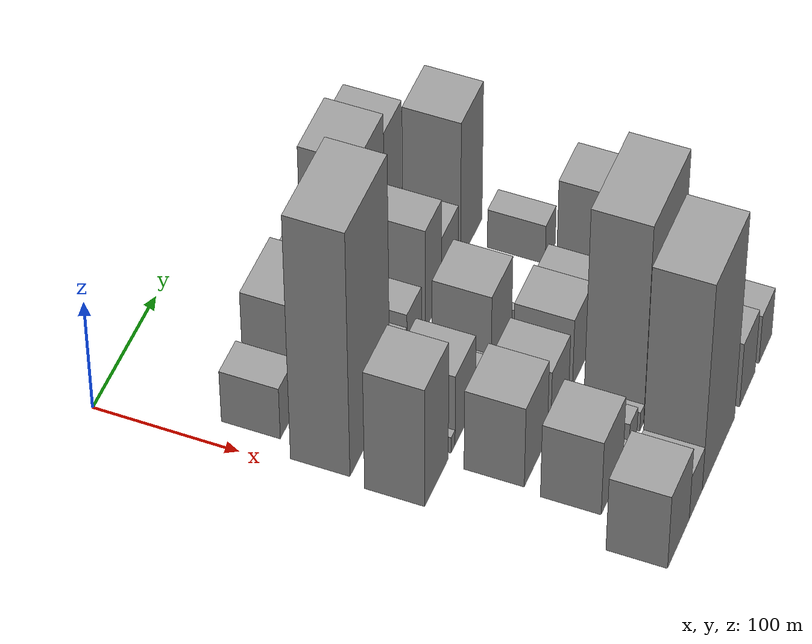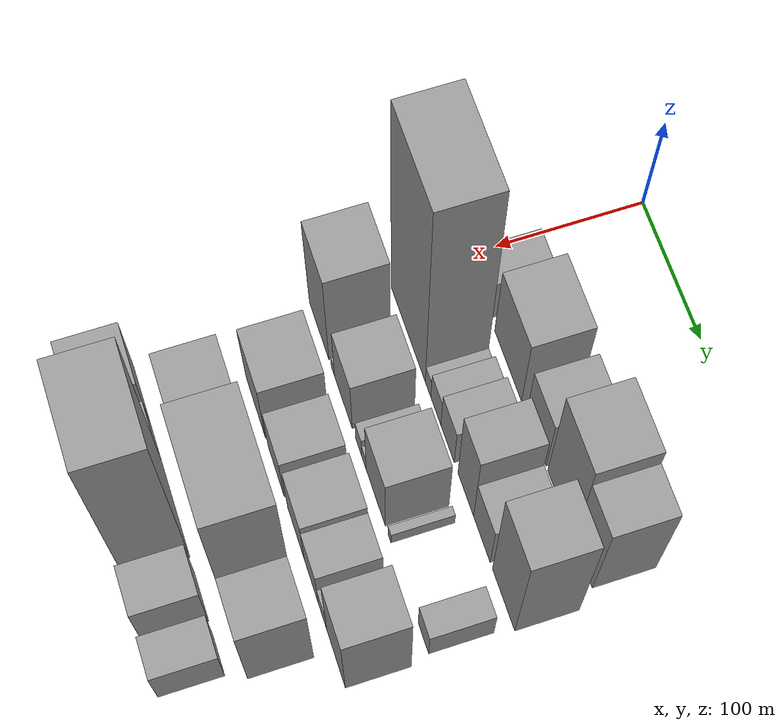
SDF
<sdf version="1.6">
 <world name="default">
  <model name="building_27">
   <static>1</static>
   <pose>100.0000 32.3830 0 0.000000 0.000000 0.000000</pose>
   <link name="link">
    <pose>0 0 24.00 0 0 0</pose>
    <collision name="collision"><geometry><box><size>40.0000 27.1123 48.0000</size></box></geometry></collision>
    <visual name="visual">
     <cast_shadows>0</cast_shadows>
     <geometry><box><size>40.0000 27.1123 48.0000</size></box></geometry>
     <material>
      <script>
       <uri>model://grey_wall/materials/scripts</uri>
       <uri>model://grey_wall/materials/textures</uri>
       <name>vrc/grey_wall</name>
      </script>
     </material>
    </visual>
   </link>
  </model>
  <model name="building_28">
   <static>1</static>
   <pose>100.0000 79.7032 0 0.000000 0.000000 0.000000</pose>
   <link name="link">
    <pose>0 0 42.00 0 0 0</pose>
    <collision name="collision"><geometry><box><size>40.0000 49.5280 84.0000</size></box></geometry></collision>
    <visual name="visual">
     <cast_shadows>0</cast_shadows>
     <geometry><box><size>40.0000 49.5280 84.0000</size></box></geometry>
     <material>
      <script>
       <uri>model://grey_wall/materials/scripts</uri>
       <uri>model://grey_wall/materials/textures</uri>
       <name>vrc/grey_wall</name>
      </script>
     </material>
    </visual>
   </link>
  </model>
  <model name="building_29">
   <static>1</static>
   <pose>100.0000 131.0560 0 0.000000 0.000000 0.000000</pose>
   <link name="link">
    <pose>0 0 33.00 0 0 0</pose>
    <collision name="collision"><geometry><box><size>40.0000 35.1776 66.0000</size></box></geometry></collision>
    <visual name="visual">
     <cast_shadows>0</cast_shadows>
     <geometry><box><size>40.0000 35.1776 66.0000</size></box></geometry>
     <material>
      <script>
       <uri>model://grey_wall/materials/scripts</uri>
       <uri>model://grey_wall/materials/textures</uri>
       <name>vrc/grey_wall</name>
      </script>
     </material>
    </visual>
   </link>
  </model>
  <model name="building_30">
   <static>1</static>
   <pose>100.0000 174.4032 0 0.000000 0.000000 0.000000</pose>
   <link name="link">
    <pose>0 0 60.00 0 0 0</pose>
    <collision name="collision"><geometry><box><size>40.0000 45.5167 120.0000</size></box></geometry></collision>
    <visual name="visual">
     <cast_shadows>0</cast_shadows>
     <geometry><box><size>40.0000 45.5167 120.0000</size></box></geometry>
     <material>
      <script>
       <uri>model://grey_wall/materials/scripts</uri>
       <uri>model://grey_wall/materials/textures</uri>
       <name>vrc/grey_wall</name>
      </script>
     </material>
    </visual>
   </link>
  </model>
  <model name="building_31">
   <static>1</static>
   <pose>100.0000 212.8217 0 0.000000 0.000000 0.000000</pose>
   <link name="link">
    <pose>0 0 51.00 0 0 0</pose>
    <collision name="collision"><geometry><box><size>40.0000 31.3202 102.0000</size></box></geometry></collision>
    <visual name="visual">
     <cast_shadows>0</cast_shadows>
     <geometry><box><size>40.0000 31.3202 102.0000</size></box></geometry>
     <material>
      <script>
       <uri>model://grey_wall/materials/scripts</uri>
       <uri>model://grey_wall/materials/textures</uri>
       <name>vrc/grey_wall</name>
      </script>
     </material>
    </visual>
   </link>
  </model>
  <model name="building_73">
   <static>1</static>
   <pose>152.0000 40.2051 0 0.000000 0.000000 0.000000</pose>
   <link name="link">
    <pose>0 0 112.50 0 0 0</pose>
    <collision name="collision"><geometry><box><size>40.0000 67.8419 225.0000</size></box></geometry></collision>
    <visual name="visual">
     <cast_shadows>0</cast_shadows>
     <geometry><box><size>40.0000 67.8419 225.0000</size></box></geometry>
     <material>
      <script>
       <uri>model://grey_wall/materials/scripts</uri>
       <uri>model://grey_wall/materials/textures</uri>
       <name>vrc/grey_wall</name>
      </script>
     </material>
    </visual>
   </link>
  </model>
  <model name="building_74">
   <static>1</static>
   <pose>152.0000 79.5233 0 0.000000 0.000000 0.000000</pose>
   <link name="link">
    <pose>0 0 12.00 0 0 0</pose>
    <collision name="collision"><geometry><box><size>40.0000 10.7944 24.0000</size></box></geometry></collision>
    <visual name="visual">
     <cast_shadows>0</cast_shadows>
     <geometry><box><size>40.0000 10.7944 24.0000</size></box></geometry>
     <material>
      <script>
       <uri>model://grey_wall/materials/scripts</uri>
       <uri>model://grey_wall/materials/textures</uri>
       <name>vrc/grey_wall</name>
      </script>
     </material>
    </visual>
   </link>
  </model>
  <model name="building_75">
   <static>1</static>
   <pose>152.0000 94.5203 0 0.000000 0.000000 0.000000</pose>
   <link name="link">
    <pose>0 0 18.00 0 0 0</pose>
    <collision name="collision"><geometry><box><size>40.0000 19.1995 36.0000</size></box></geometry></collision>
    <visual name="visual">
     <cast_shadows>0</cast_shadows>
     <geometry><box><size>40.0000 19.1995 36.0000</size></box></geometry>
     <material>
      <script>
       <uri>model://grey_wall/materials/scripts</uri>
       <uri>model://grey_wall/materials/textures</uri>
       <name>vrc/grey_wall</name>
      </script>
     </material>
    </visual>
   </link>
  </model>
  <model name="building_76">
   <static>1</static>
   <pose>152.0000 116.7241 0 0.000000 0.000000 0.000000</pose>
   <link name="link">
    <pose>0 0 24.00 0 0 0</pose>
    <collision name="collision"><geometry><box><size>40.0000 25.2081 48.0000</size></box></geometry></collision>
    <visual name="visual">
     <cast_shadows>0</cast_shadows>
     <geometry><box><size>40.0000 25.2081 48.0000</size></box></geometry>
     <material>
      <script>
       <uri>model://grey_wall/materials/scripts</uri>
       <uri>model://grey_wall/materials/textures</uri>
       <name>vrc/grey_wall</name>
      </script>
     </material>
    </visual>
   </link>
  </model>
  <model name="building_77">
   <static>1</static>
   <pose>152.0000 150.6481 0 0.000000 0.000000 0.000000</pose>
   <link name="link">
    <pose>0 0 46.50 0 0 0</pose>
    <collision name="collision"><geometry><box><size>40.0000 28.6399 93.0000</size></box></geometry></collision>
    <visual name="visual">
     <cast_shadows>0</cast_shadows>
     <geometry><box><size>40.0000 28.6399 93.0000</size></box></geometry>
     <material>
      <script>
       <uri>model://grey_wall/materials/scripts</uri>
       <uri>model://grey_wall/materials/textures</uri>
       <name>vrc/grey_wall</name>
      </script>
     </material>
    </visual>
   </link>
  </model>
  <model name="building_78">
   <static>1</static>
   <pose>152.0000 180.0449 0 0.000000 0.000000 0.000000</pose>
   <link name="link">
    <pose>0 0 28.50 0 0 0</pose>
    <collision name="collision"><geometry><box><size>40.0000 30.1537 57.0000</size></box></geometry></collision>
    <visual name="visual">
     <cast_shadows>0</cast_shadows>
     <geometry><box><size>40.0000 30.1537 57.0000</size></box></geometry>
     <material>
      <script>
       <uri>model://grey_wall/materials/scripts</uri>
       <uri>model://grey_wall/materials/textures</uri>
       <name>vrc/grey_wall</name>
      </script>
     </material>
    </visual>
   </link>
  </model>
  <model name="building_79">
   <static>1</static>
   <pose>152.0000 218.8560 0 0.000000 0.000000 0.000000</pose>
   <link name="link">
    <pose>0 0 64.50 0 0 0</pose>
    <collision name="collision"><geometry><box><size>40.0000 39.4686 129.0000</size></box></geometry></collision>
    <visual name="visual">
     <cast_shadows>0</cast_shadows>
     <geometry><box><size>40.0000 39.4686 129.0000</size></box></geometry>
     <material>
      <script>
       <uri>model://grey_wall/materials/scripts</uri>
       <uri>model://grey_wall/materials/textures</uri>
       <name>vrc/grey_wall</name>
      </script>
     </material>
    </visual>
   </link>
  </model>
  <model name="building_128">
   <static>1</static>
   <pose>204.0000 21.1085 0 0.000000 0.000000 0.000000</pose>
   <link name="link">
    <pose>0 0 55.50 0 0 0</pose>
    <collision name="collision"><geometry><box><size>40.0000 40.7753 111.0000</size></box></geometry></collision>
    <visual name="visual">
     <cast_shadows>0</cast_shadows>
     <geometry><box><size>40.0000 40.7753 111.0000</size></box></geometry>
     <material>
      <script>
       <uri>model://grey_wall/materials/scripts</uri>
       <uri>model://grey_wall/materials/textures</uri>
       <name>vrc/grey_wall</name>
      </script>
     </material>
    </visual>
   </link>
  </model>
  <model name="building_129">
   <static>1</static>
   <pose>204.0000 49.8480 0 0.000000 0.000000 0.000000</pose>
   <link name="link">
    <pose>0 0 7.50 0 0 0</pose>
    <collision name="collision"><geometry><box><size>40.0000 6.7038 15.0000</size></box></geometry></collision>
    <visual name="visual">
     <cast_shadows>0</cast_shadows>
     <geometry><box><size>40.0000 6.7038 15.0000</size></box></geometry>
     <material>
      <script>
       <uri>model://grey_wall/materials/scripts</uri>
       <uri>model://grey_wall/materials/textures</uri>
       <name>vrc/grey_wall</name>
      </script>
     </material>
    </visual>
   </link>
  </model>
  <model name="building_130">
   <static>1</static>
   <pose>204.0000 71.2294 0 0.000000 0.000000 0.000000</pose>
   <link name="link">
    <pose>0 0 33.00 0 0 0</pose>
    <collision name="collision"><geometry><box><size>40.0000 36.0588 66.0000</size></box></geometry></collision>
    <visual name="visual">
     <cast_shadows>0</cast_shadows>
     <geometry><box><size>40.0000 36.0588 66.0000</size></box></geometry>
     <material>
      <script>
       <uri>model://grey_wall/materials/scripts</uri>
       <uri>model://grey_wall/materials/textures</uri>
       <name>vrc/grey_wall</name>
      </script>
     </material>
    </visual>
   </link>
  </model>
  <model name="building_131">
   <static>1</static>
   <pose>204.0000 102.2700 0 0.000000 0.000000 0.000000</pose>
   <link name="link">
    <pose>0 0 13.50 0 0 0</pose>
    <collision name="collision"><geometry><box><size>40.0000 12.0224 27.0000</size></box></geometry></collision>
    <visual name="visual">
     <cast_shadows>0</cast_shadows>
     <geometry><box><size>40.0000 12.0224 27.0000</size></box></geometry>
     <material>
      <script>
       <uri>model://grey_wall/materials/scripts</uri>
       <uri>model://grey_wall/materials/textures</uri>
       <name>vrc/grey_wall</name>
      </script>
     </material>
    </visual>
   </link>
  </model>
  <model name="building_132">
   <static>1</static>
   <pose>204.0000 112.6534 0 0.000000 0.000000 0.000000</pose>
   <link name="link">
    <pose>0 0 9.00 0 0 0</pose>
    <collision name="collision"><geometry><box><size>40.0000 8.7445 18.0000</size></box></geometry></collision>
    <visual name="visual">
     <cast_shadows>0</cast_shadows>
     <geometry><box><size>40.0000 8.7445 18.0000</size></box></geometry>
     <material>
      <script>
       <uri>model://grey_wall/materials/scripts</uri>
       <uri>model://grey_wall/materials/textures</uri>
       <name>vrc/grey_wall</name>
      </script>
     </material>
    </visual>
   </link>
  </model>
  <model name="building_133">
   <static>1</static>
   <pose>204.0000 135.7043 0 0.000000 0.000000 0.000000</pose>
   <link name="link">
    <pose>0 0 36.00 0 0 0</pose>
    <collision name="collision"><geometry><box><size>40.0000 37.3571 72.0000</size></box></geometry></collision>
    <visual name="visual">
     <cast_shadows>0</cast_shadows>
     <geometry><box><size>40.0000 37.3571 72.0000</size></box></geometry>
     <material>
      <script>
       <uri>model://grey_wall/materials/scripts</uri>
       <uri>model://grey_wall/materials/textures</uri>
       <name>vrc/grey_wall</name>
      </script>
     </material>
    </visual>
   </link>
  </model>
  <model name="building_134">
   <static>1</static>
   <pose>204.0000 162.3906 0 0.000000 0.000000 0.000000</pose>
   <link name="link">
    <pose>0 0 7.50 0 0 0</pose>
    <collision name="collision"><geometry><box><size>40.0000 6.0155 15.0000</size></box></geometry></collision>
    <visual name="visual">
     <cast_shadows>0</cast_shadows>
     <geometry><box><size>40.0000 6.0155 15.0000</size></box></geometry>
     <material>
      <script>
       <uri>model://grey_wall/materials/scripts</uri>
       <uri>model://grey_wall/materials/textures</uri>
       <name>vrc/grey_wall</name>
      </script>
     </material>
    </visual>
   </link>
  </model>
  <model name="building_135">
   <static>1</static>
   <pose>204.0000 226.2220 0 0.000000 0.000000 0.000000</pose>
   <link name="link">
    <pose>0 0 18.00 0 0 0</pose>
    <collision name="collision"><geometry><box><size>40.0000 19.2158 36.0000</size></box></geometry></collision>
    <visual name="visual">
     <cast_shadows>0</cast_shadows>
     <geometry><box><size>40.0000 19.2158 36.0000</size></box></geometry>
     <material>
      <script>
       <uri>model://grey_wall/materials/scripts</uri>
       <uri>model://grey_wall/materials/textures</uri>
       <name>vrc/grey_wall</name>
      </script>
     </material>
    </visual>
   </link>
  </model>
  <model name="building_183">
   <static>1</static>
   <pose>256.0000 58.1832 0 0.000000 0.000000 0.000000</pose>
   <link name="link">
    <pose>0 0 37.50 0 0 0</pose>
    <collision name="collision"><geometry><box><size>40.0000 41.4893 75.0000</size></box></geometry></collision>
    <visual name="visual">
     <cast_shadows>0</cast_shadows>
     <geometry><box><size>40.0000 41.4893 75.0000</size></box></geometry>
     <material>
      <script>
       <uri>model://grey_wall/materials/scripts</uri>
       <uri>model://grey_wall/materials/textures</uri>
       <name>vrc/grey_wall</name>
      </script>
     </material>
    </visual>
   </link>
  </model>
  <model name="building_184">
   <static>1</static>
   <pose>256.0000 101.5526 0 0.000000 0.000000 0.000000</pose>
   <link name="link">
    <pose>0 0 28.50 0 0 0</pose>
    <collision name="collision"><geometry><box><size>40.0000 33.2495 57.0000</size></box></geometry></collision>
    <visual name="visual">
     <cast_shadows>0</cast_shadows>
     <geometry><box><size>40.0000 33.2495 57.0000</size></box></geometry>
     <material>
      <script>
       <uri>model://grey_wall/materials/scripts</uri>
       <uri>model://grey_wall/materials/textures</uri>
       <name>vrc/grey_wall</name>
      </script>
     </material>
    </visual>
   </link>
  </model>
  <model name="building_185">
   <static>1</static>
   <pose>256.0000 142.5077 0 0.000000 0.000000 0.000000</pose>
   <link name="link">
    <pose>0 0 31.50 0 0 0</pose>
    <collision name="collision"><geometry><box><size>40.0000 34.6606 63.0000</size></box></geometry></collision>
    <visual name="visual">
     <cast_shadows>0</cast_shadows>
     <geometry><box><size>40.0000 34.6606 63.0000</size></box></geometry>
     <material>
      <script>
       <uri>model://grey_wall/materials/scripts</uri>
       <uri>model://grey_wall/materials/textures</uri>
       <name>vrc/grey_wall</name>
      </script>
     </material>
    </visual>
   </link>
  </model>
  <model name="building_186">
   <static>1</static>
   <pose>256.0000 173.6826 0 0.000000 0.000000 0.000000</pose>
   <link name="link">
    <pose>0 0 27.00 0 0 0</pose>
    <collision name="collision"><geometry><box><size>40.0000 27.6891 54.0000</size></box></geometry></collision>
    <visual name="visual">
     <cast_shadows>0</cast_shadows>
     <geometry><box><size>40.0000 27.6891 54.0000</size></box></geometry>
     <material>
      <script>
       <uri>model://grey_wall/materials/scripts</uri>
       <uri>model://grey_wall/materials/textures</uri>
       <name>vrc/grey_wall</name>
      </script>
     </material>
    </visual>
   </link>
  </model>
  <model name="building_187">
   <static>1</static>
   <pose>256.0000 195.9161 0 0.000000 0.000000 0.000000</pose>
   <link name="link">
    <pose>0 0 15.00 0 0 0</pose>
    <collision name="collision"><geometry><box><size>40.0000 16.7779 30.0000</size></box></geometry></collision>
    <visual name="visual">
     <cast_shadows>0</cast_shadows>
     <geometry><box><size>40.0000 16.7779 30.0000</size></box></geometry>
     <material>
      <script>
       <uri>model://grey_wall/materials/scripts</uri>
       <uri>model://grey_wall/materials/textures</uri>
       <name>vrc/grey_wall</name>
      </script>
     </material>
    </visual>
   </link>
  </model>
  <model name="building_188">
   <static>1</static>
   <pose>256.0000 222.0862 0 0.000000 0.000000 0.000000</pose>
   <link name="link">
    <pose>0 0 48.00 0 0 0</pose>
    <collision name="collision"><geometry><box><size>40.0000 35.5621 96.0000</size></box></geometry></collision>
    <visual name="visual">
     <cast_shadows>0</cast_shadows>
     <geometry><box><size>40.0000 35.5621 96.0000</size></box></geometry>
     <material>
      <script>
       <uri>model://grey_wall/materials/scripts</uri>
       <uri>model://grey_wall/materials/textures</uri>
       <name>vrc/grey_wall</name>
      </script>
     </material>
    </visual>
   </link>
  </model>
  <model name="building_235">
   <static>1</static>
   <pose>308.0000 53.6199 0 0.000000 0.000000 0.000000</pose>
   <link name="link">
    <pose>0 0 34.50 0 0 0</pose>
    <collision name="collision"><geometry><box><size>40.0000 39.6173 69.0000</size></box></geometry></collision>
    <visual name="visual">
     <cast_shadows>0</cast_shadows>
     <geometry><box><size>40.0000 39.6173 69.0000</size></box></geometry>
     <material>
      <script>
       <uri>model://grey_wall/materials/scripts</uri>
       <uri>model://grey_wall/materials/textures</uri>
       <name>vrc/grey_wall</name>
      </script>
     </material>
    </visual>
   </link>
  </model>
  <model name="building_236">
   <static>1</static>
   <pose>308.0000 81.5007 0 0.000000 0.000000 0.000000</pose>
   <link name="link">
    <pose>0 0 7.50 0 0 0</pose>
    <collision name="collision"><geometry><box><size>40.0000 6.1443 15.0000</size></box></geometry></collision>
    <visual name="visual">
     <cast_shadows>0</cast_shadows>
     <geometry><box><size>40.0000 6.1443 15.0000</size></box></geometry>
     <material>
      <script>
       <uri>model://grey_wall/materials/scripts</uri>
       <uri>model://grey_wall/materials/textures</uri>
       <name>vrc/grey_wall</name>
      </script>
     </material>
    </visual>
   </link>
  </model>
  <model name="building_237">
   <static>1</static>
   <pose>308.0000 92.0863 0 0.000000 0.000000 0.000000</pose>
   <link name="link">
    <pose>0 0 15.00 0 0 0</pose>
    <collision name="collision"><geometry><box><size>40.0000 15.0268 30.0000</size></box></geometry></collision>
    <visual name="visual">
     <cast_shadows>0</cast_shadows>
     <geometry><box><size>40.0000 15.0268 30.0000</size></box></geometry>
     <material>
      <script>
       <uri>model://grey_wall/materials/scripts</uri>
       <uri>model://grey_wall/materials/textures</uri>
       <name>vrc/grey_wall</name>
      </script>
     </material>
    </visual>
   </link>
  </model>
  <model name="building_238">
   <static>1</static>
   <pose>308.0000 109.2174 0 0.000000 0.000000 0.000000</pose>
   <link name="link">
    <pose>0 0 9.00 0 0 0</pose>
    <collision name="collision"><geometry><box><size>40.0000 7.2355 18.0000</size></box></geometry></collision>
    <visual name="visual">
     <cast_shadows>0</cast_shadows>
     <geometry><box><size>40.0000 7.2355 18.0000</size></box></geometry>
     <material>
      <script>
       <uri>model://grey_wall/materials/scripts</uri>
       <uri>model://grey_wall/materials/textures</uri>
       <name>vrc/grey_wall</name>
      </script>
     </material>
    </visual>
   </link>
  </model>
  <model name="building_239">
   <static>1</static>
   <pose>308.0000 147.0369 0 0.000000 0.000000 0.000000</pose>
   <link name="link">
    <pose>0 0 91.50 0 0 0</pose>
    <collision name="collision"><geometry><box><size>40.0000 68.4035 183.0000</size></box></geometry></collision>
    <visual name="visual">
     <cast_shadows>0</cast_shadows>
     <geometry><box><size>40.0000 68.4035 183.0000</size></box></geometry>
     <material>
      <script>
       <uri>model://grey_wall/materials/scripts</uri>
       <uri>model://grey_wall/materials/textures</uri>
       <name>vrc/grey_wall</name>
      </script>
     </material>
    </visual>
   </link>
  </model>
  <model name="building_240">
   <static>1</static>
   <pose>308.0000 199.2541 0 0.000000 0.000000 0.000000</pose>
   <link name="link">
    <pose>0 0 46.50 0 0 0</pose>
    <collision name="collision"><geometry><box><size>40.0000 36.0311 93.0000</size></box></geometry></collision>
    <visual name="visual">
     <cast_shadows>0</cast_shadows>
     <geometry><box><size>40.0000 36.0311 93.0000</size></box></geometry>
     <material>
      <script>
       <uri>model://grey_wall/materials/scripts</uri>
       <uri>model://grey_wall/materials/textures</uri>
       <name>vrc/grey_wall</name>
      </script>
     </material>
    </visual>
   </link>
  </model>
  <model name="building_280">
   <static>1</static>
   <pose>360.0000 29.1734 0 0.000000 0.000000 0.000000</pose>
   <link name="link">
    <pose>0 0 34.50 0 0 0</pose>
    <collision name="collision"><geometry><box><size>40.0000 40.5847 69.0000</size></box></geometry></collision>
    <visual name="visual">
     <cast_shadows>0</cast_shadows>
     <geometry><box><size>40.0000 40.5847 69.0000</size></box></geometry>
     <material>
      <script>
       <uri>model://grey_wall/materials/scripts</uri>
       <uri>model://grey_wall/materials/textures</uri>
       <name>vrc/grey_wall</name>
      </script>
     </material>
    </visual>
   </link>
  </model>
  <model name="building_281">
   <static>1</static>
   <pose>360.0000 61.8831 0 0.000000 0.000000 0.000000</pose>
   <link name="link">
    <pose>0 0 21.00 0 0 0</pose>
    <collision name="collision"><geometry><box><size>40.0000 24.8347 42.0000</size></box></geometry></collision>
    <visual name="visual">
     <cast_shadows>0</cast_shadows>
     <geometry><box><size>40.0000 24.8347 42.0000</size></box></geometry>
     <material>
      <script>
       <uri>model://grey_wall/materials/scripts</uri>
       <uri>model://grey_wall/materials/textures</uri>
       <name>vrc/grey_wall</name>
      </script>
     </material>
    </visual>
   </link>
  </model>
  <model name="building_282">
   <static>1</static>
   <pose>360.0000 105.7253 0 0.000000 0.000000 0.000000</pose>
   <link name="link">
    <pose>0 0 96.00 0 0 0</pose>
    <collision name="collision"><geometry><box><size>40.0000 62.8495 192.0000</size></box></geometry></collision>
    <visual name="visual">
     <cast_shadows>0</cast_shadows>
     <geometry><box><size>40.0000 62.8495 192.0000</size></box></geometry>
     <material>
      <script>
       <uri>model://grey_wall/materials/scripts</uri>
       <uri>model://grey_wall/materials/textures</uri>
       <name>vrc/grey_wall</name>
      </script>
     </material>
    </visual>
   </link>
  </model>
  <model name="building_283">
   <static>1</static>
   <pose>360.0000 162.4381 0 0.000000 0.000000 0.000000</pose>
   <link name="link">
    <pose>0 0 30.00 0 0 0</pose>
    <collision name="collision"><geometry><box><size>40.0000 30.5761 60.0000</size></box></geometry></collision>
    <visual name="visual">
     <cast_shadows>0</cast_shadows>
     <geometry><box><size>40.0000 30.5761 60.0000</size></box></geometry>
     <material>
      <script>
       <uri>model://grey_wall/materials/scripts</uri>
       <uri>model://grey_wall/materials/textures</uri>
       <name>vrc/grey_wall</name>
      </script>
     </material>
    </visual>
   </link>
  </model>
  <model name="building_284">
   <static>1</static>
   <pose>360.0000 198.5998 0 0.000000 0.000000 0.000000</pose>
   <link name="link">
    <pose>0 0 22.50 0 0 0</pose>
    <collision name="collision"><geometry><box><size>40.0000 25.7474 45.0000</size></box></geometry></collision>
    <visual name="visual">
     <cast_shadows>0</cast_shadows>
     <geometry><box><size>40.0000 25.7474 45.0000</size></box></geometry>
     <material>
      <script>
       <uri>model://grey_wall/materials/scripts</uri>
       <uri>model://grey_wall/materials/textures</uri>
       <name>vrc/grey_wall</name>
      </script>
     </material>
    </visual>
   </link>
  </model>
 </world>
</sdf>
